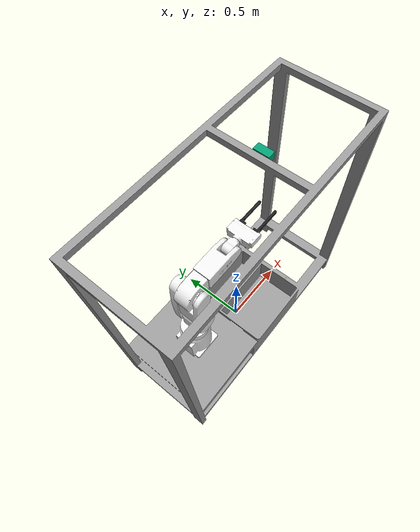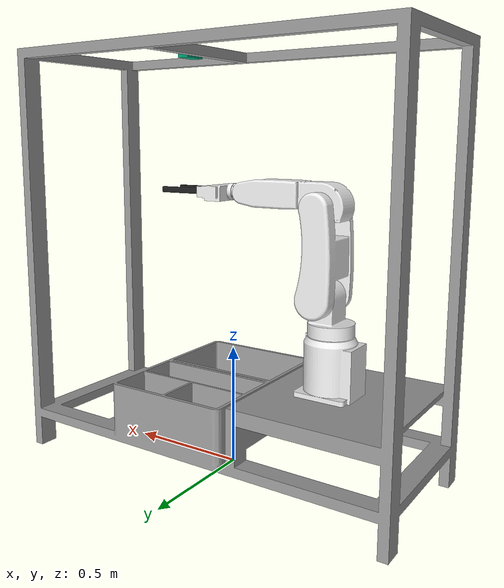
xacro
<?xml version="1.0" ?>

<robot name="arm" xmlns:xacro="http://www.ros.org/wiki/xacro">

  <!-- BEGIN - Include -->
  <xacro:include filename="$(find hiwin_arm)/urdf/robot_parameters.xacro" />
  <xacro:include filename="$(find hiwin_arm)/urdf/links_joints.xacro" />
  <!-- END - Include -->

  <!-- World frame (for Gazebo) -->
  <link name="world"/>

  <!-- Arm fixed to world frame  -->
  <joint name="world_cell" type="fixed">
    <parent link="world"/>
    <child link="cell"/>
  </joint>

  <m_link_mesh name="cell" color="grey"
              origin_rpy="1.5708 0 0" origin_xyz="0 0 0"
              mass="157.633"
              ixx="13.235" ixy="0" ixz="0"
              iyy="13.235" iyz="0"
              izz="9.655"
              meshfile="package://hiwin_arm/meshes/cell_lowq.stl"
              meshscale="0.001 0.001 0.001" />

  <gazebo reference="cell">
    <material>Gazebo/Grey</material>
  </gazebo>

  <joint name="cell_${link_00_name}" type="fixed">
    <parent link="cell" origin_xyz="-0.445 0 0.391"/>
    <child link="${link_00_name}"/>
  </joint>

  <!-- BEGIN - Robot description -->

  <m_link_mesh name="${link_00_name}" color="white"
              origin_rpy="0 0 1.5708" origin_xyz="-0.445 0 0.391"
              mass="50"
              ixx="300" ixy="0" ixz="0"
              iyy="300" iyz="0"
              izz="300"
              meshfile="package://hiwin_arm/meshes/base_link_lowq.stl"
              meshscale="0.001 0.001 0.001" />

  <m_joint name="${link_00_name}__${link_01_name}" type="revolute"
           axis_xyz="0 0 1"
           origin_rpy="0 0 0" origin_xyz="-0.445 0 ${0.391+0.239}"
           parent="${link_00_name}" child="${link_01_name}"
           limit_e="1000" limit_l="-2.0" limit_u="2.0" limit_v="0.5" />

  <m_link_mesh name="${link_01_name}" color="white"
              origin_rpy="0 0 0" origin_xyz="0 0 0"
              mass="15"
              ixx="100" ixy="0" ixz="0"
              iyy="100" iyz="0"
              izz="100"
              meshfile="package://hiwin_arm/meshes/link_01_lowq.stl"
              meshscale="0.001 0.001 0.001" />

  <m_joint name="${link_01_name}__${link_02_name}" type="revolute"
           axis_xyz="0 1 0"
           origin_rpy="0 0 0" origin_xyz="0.030 0 0.138"
           parent="${link_01_name}" child="${link_02_name}"
           limit_e="1000" limit_l="-1.57" limit_u="1.57" limit_v="0.5" />

  <m_link_mesh name="${link_02_name}" color="white"
              origin_rpy="0 0 0" origin_xyz="0.0 0 0"
              mass="10"
              ixx="100" ixy="0" ixz="0"
              iyy="100" iyz="0"
              izz="100"
              meshfile="package://hiwin_arm/meshes/link_02_lowq.stl"
              meshscale="0.001 0.001 0.001" />

  <m_joint name="${link_02_name}__${link_03_name}" type="revolute"
           axis_xyz="0 1 0"
           origin_rpy="0 0 0" origin_xyz="0.000 0 0.340"
           parent="${link_02_name}" child="${link_03_name}"
           limit_e="1000" limit_l="-2.0" limit_u="1.1" limit_v="0.5" />

  <m_link_mesh name="${link_03_name}" color="white"
              origin_rpy="0 0 0" origin_xyz="0 0 0"
              mass="10"
              ixx="100" ixy="0" ixz="0"
              iyy="100" iyz="0"
              izz="100"
              meshfile="package://hiwin_arm/meshes/link_03_lowq.stl"
              meshscale="0.001 0.001 0.001" />

  <m_joint name="${link_03_name}__${link_04_name}" type="revolute"
           axis_xyz="0 1 0"
           origin_rpy="0 0 0" origin_xyz="0.340 0 0.040"
           parent="${link_03_name}" child="${link_04_name}"
           limit_e="1000" limit_l="-2.0" limit_u="2.0" limit_v="0.5" />

  <m_link_mesh name="${link_04_name}" color="white"
              origin_rpy="0 0 0" origin_xyz="0 0 0"
              mass="5"
              ixx="100" ixy="0" ixz="0"
              iyy="100" iyz="0"
              izz="100"
              meshfile="package://hiwin_arm/meshes/link_04_lowq.stl"
              meshscale="0.001 0.001 0.001" />

  <m_joint name="${link_04_name}__${gripper_name}" type="revolute"
           axis_xyz="1 0 0"
           origin_rpy="0 0 0" origin_xyz="0.0765 0 0.000"
           parent="${link_04_name}" child="${gripper_name}"
           limit_e="1000" limit_l="-1.57" limit_u="1.57" limit_v="0.5" />

  <m_link_mesh name="${gripper_name}" color="white"
              origin_rpy="0 0 0" origin_xyz="0 0 0"
              mass="2"
              ixx="100" ixy="0" ixz="0"
              iyy="100" iyz="0"
              izz="100"
              meshfile="package://hiwin_arm/meshes/gripper_lowq.stl"
              meshscale="0.001 0.001 0.001" />

  <m_joint name="${gripper_name}__clamp_r" type="prismatic"
           axis_xyz="1 0 0"
           origin_rpy="1.57 0 1.57" origin_xyz="0.108 -0.05 0.000"
           parent="${gripper_name}" child="clamp_r"
           limit_e="1000" limit_l="0.00" limit_u="0.03" limit_v="0.5" />

  <m_link_mesh name="clamp_r" color="black"
              origin_rpy="0 0 0" origin_xyz="0 0 0"
              mass="0.1"
              ixx="50" ixy="0" ixz="0"
              iyy="50" iyz="0"
              izz="50"
              meshfile="package://hiwin_arm/meshes/clamp_lowq.stl"
              meshscale="0.001 0.001 0.001" />

  <gazebo reference="clamp_r">
    <material>Gazebo/Black</material>
  </gazebo>

  <m_joint name="${gripper_name}__clamp_l" type="prismatic"
           axis_xyz="1 0 0"
           origin_rpy="1.57 3.14 1.57" origin_xyz="0.108 0.05 0.000"
           parent="${gripper_name}" child="clamp_l"
           limit_e="1000" limit_l="0.00" limit_u="0.03" limit_v="0.5" />

  <m_link_mesh name="clamp_l" color="black"
              origin_rpy="0 0 0" origin_xyz="0 0 0"
              mass="0.1"
              ixx="50" ixy="0" ixz="0"
              iyy="50" iyz="0"
              izz="50"
              meshfile="package://hiwin_arm/meshes/clamp_lowq.stl"
              meshscale="0.001 0.001 0.001" />

  <gazebo reference="clamp_l">
    <material>Gazebo/Black</material>
  </gazebo>

  <!-- END - Robot description -->

  <gazebo>
    <plugin name="gazebo_ros_control" filename="libgazebo_ros_control.so">
      <robotSimType>gazebo_ros_control/DefaultRobotHWSim</robotSimType>
      <legacyModeNS>true</legacyModeNS>
    </plugin>
  </gazebo>

  <!-- BEGIN - DEPTH-RGB Camera -->

  <joint name="openni_camera_joint" type="fixed">
    <axis xyz="0 1 0" />
    <origin xyz="${camera_x} 0 ${camera_z}" rpy="0 1.57 0"/>
    <parent link="cell"/>
    <child link="${camera_name}"/>
  </joint>

  <link name="${camera_name}">
    <collision>
      <origin xyz="0 0 0" rpy="0 0 0"/>
      <geometry>
    <box size="0.05 0.1 0.05"/>
      </geometry>
    </collision>

    <visual>
      <origin xyz="0 0 0" rpy="0 0 0"/>
      <geometry>
        <box size="0.05 0.1 0.05"/>
      </geometry>
    </visual>

    <inertial>
      <mass value="1e-5" />
      <origin xyz="0 0 0" rpy="0 0 0"/>
      <inertia ixx="1e-6" ixy="0" ixz="0" iyy="1e-6" iyz="0" izz="1e-6" />
    </inertial>
  </link>

  <gazebo reference="${camera_name}">
    <sensor type="depth" name="openni_camera_camera">
        <always_on>1</always_on>
        <visualize>true</visualize>
        <camera>
            <horizontal_fov>1.047</horizontal_fov>
            <image>
                <width>640</width>
                <height>480</height>
                <format>R8G8B8</format>
            </image>
            <depth_camera>

            </depth_camera>
            <clip>
                <near>0.1</near>
                <far>100</far>
            </clip>
        </camera>
        <plugin name="camera_controller" filename="libgazebo_ros_openni_kinect.so">
            <alwaysOn>true</alwaysOn>
                <updateRate>10.0</updateRate>
                <cameraName>camera</cameraName>
                <frameName>openni_camera_link</frameName>
            <imageTopicName>rgb/image_raw</imageTopicName>
            <depthImageTopicName>depth/image_raw</depthImageTopicName>
            <pointCloudTopicName>depth/points</pointCloudTopicName>
            <cameraInfoTopicName>rgb/camera_info</cameraInfoTopicName>
            <depthImageCameraInfoTopicName>depth/camera_info</depthImageCameraInfoTopicName>
            <pointCloudCutoff>0.4</pointCloudCutoff>
                <hackBaseline>0.07</hackBaseline>
                <distortionK1>0.0</distortionK1>
                <distortionK2>0.0</distortionK2>
                <distortionK3>0.0</distortionK3>
                <distortionT1>0.0</distortionT1>
                <distortionT2>0.0</distortionT2>
            <CxPrime>0.0</CxPrime>
            <Cx>0.0</Cx>
            <Cy>0.0</Cy>
            <focalLength>0.0</focalLength>
        </plugin>
    </sensor>
  </gazebo>

  <!-- END - DEPTH-RGB Camera -->

</robot>

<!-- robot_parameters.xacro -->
<robot xmlns:xacro="http://www.ros.org/wiki/xacro">
  <xacro:property name="cell_name" value="cell" />
  <xacro:property name="link_00_name" value="base_link" />
  <xacro:property name="link_01_name" value="link_01" />
  <xacro:property name="link_02_name" value="link_02" />
  <xacro:property name="link_03_name" value="link_03" />
  <xacro:property name="link_04_name" value="link_04" />
  <xacro:property name="gripper_name" value="electric_gripper" />
  <xacro:property name="camera_z" value="1.7" />
  <xacro:property name="camera_x" value="0.21" />
  <xacro:property name="camera_name" value="openni_camera_link" />
</robot>

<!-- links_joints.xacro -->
<robot xmlns:xacro="http://www.ros.org/wiki/xacro">

  <xacro:macro name="m_joint" params="name type axis_xyz origin_rpy origin_xyz parent child limit_e limit_l limit_u limit_v">
    <joint name="${name}" type="${type}">
      <axis xyz="${axis_xyz}" />
      <limit effort="${limit_e}" lower="${limit_l}" upper="${limit_u}" velocity="${limit_v}" />
      <origin rpy="${origin_rpy}" xyz="${origin_xyz}" />
      <parent link="${parent}" />
      <child link="${child}" />
    </joint>
    <transmission name="trans_${name}">
      <type>transmission_interface/SimpleTransmission</type>
      <joint name="${name}">
        <hardwareInterface>hardware_interface/EffortJointInterface</hardwareInterface>
      </joint>
      <actuator name="motor_${name}">
        <hardwareInterface>hardware_interface/EffortJointInterface</hardwareInterface>
        <mechanicalReduction>1</mechanicalReduction>
      </actuator>
    </transmission>
  </xacro:macro>

  <xacro:macro name="m_link_cylinder" params="name origin_xyz origin_rpy radius length mass ixx ixy ixz iyy iyz izz">
    <link name="${name}">
      <inertial>
        <mass value="${mass}" />
        <origin rpy="${origin_rpy}" xyz="${origin_xyz}" />
        <inertia ixx="${ixx}" ixy="${ixy}" ixz="${ixz}" iyy="${iyy}" iyz="${iyz}" izz="${izz}" />
      </inertial>
      <collision>
        <origin rpy="${origin_rpy}" xyz="${origin_xyz}" />
        <geometry>
          <cylinder radius="${radius}" length="${length}" />
        </geometry>
      </collision>
      <visual>
        <origin rpy="${origin_rpy}" xyz="${origin_xyz}" />
        <geometry>
          <cylinder radius="${radius}" length="${length}" />
        </geometry>
      </visual>
    </link>
  </xacro:macro>

  <xacro:macro name="m_link_box" params="name origin_xyz origin_rpy size mass ixx ixy ixz iyy iyz izz">
    <link name="${name}">
      <inertial>
        <mass value="${mass}" />
        <origin rpy="${origin_rpy}" xyz="${origin_xyz}" />
        <inertia ixx="${ixx}" ixy="${ixy}" ixz="${ixz}" iyy="${iyy}" iyz="${iyz}" izz="${izz}" />
      </inertial>
      <collision>
        <origin rpy="${origin_rpy}" xyz="${origin_xyz}" />
        <geometry>
          <box size="${size}" />
        </geometry>
      </collision>
      <visual>
        <origin rpy="${origin_rpy}" xyz="${origin_xyz}" />
        <geometry>
          <box size="${size}" />
        </geometry>
      </visual>
    </link>
  </xacro:macro>

  <xacro:macro name="m_link_mesh" params="name color origin_xyz origin_rpy meshfile meshscale mass ixx ixy ixz iyy iyz izz">
    <link name="${name}">
      <inertial>
        <mass value="${mass}" />
        <origin rpy="${origin_rpy}" xyz="${origin_xyz}" />
        <inertia ixx="${ixx}" ixy="${ixy}" ixz="${ixz}" iyy="${iyy}" iyz="${iyz}" izz="${izz}" />
      </inertial>
      <collision>
        <origin rpy="${origin_rpy}" xyz="${origin_xyz}" />
        <geometry>
          <mesh filename="${meshfile}" scale="${meshscale}"/>
        </geometry>
      </collision>
      <visual>
        <origin rpy="${origin_rpy}" xyz="${origin_xyz}" />
        <geometry>
          <mesh filename="${meshfile}" scale="${meshscale}"/>
        </geometry>
        <material name="${color}"/>
      </visual>
    </link>
  </xacro:macro>

</robot>
